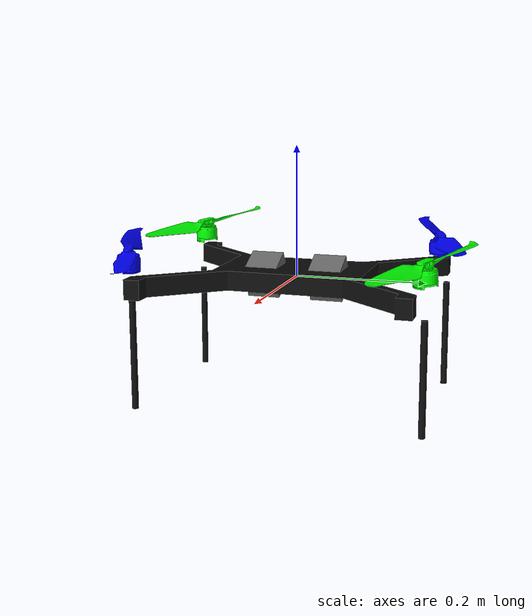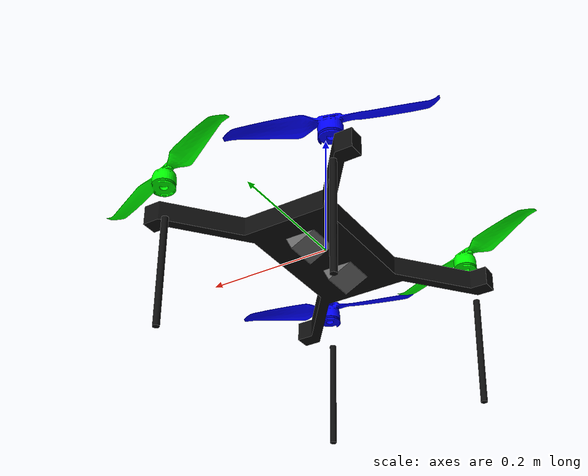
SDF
<?xml version='1.0'?>
<sdf version='1.9'>
  <model name="grass-amb-cam-copy">

    <include>
      <uri>model://grasshopper</uri>
    </include>

    <link name="camera_link">
      <pose>0 -0.05 0 0 90 0</pose>
      <visual name="camera_body">
        <geometry>
          <box>
            <size>0.05 0.05 0.05</size>
          </box>
        </geometry>
        <material>
          <ambient>0.2 0.2 0.2 1</ambient>
          <diffuse>0.4 0.4 0.4 1</diffuse>
        </material>
      </visual>
      <sensor name="camera" type="camera">
        <pose degrees="true"> 0 -0.05 0 0 90 0</pose>

        <camera>
          <vertical_fov>1.1693</vertical_fov>
          <horizontal_fov>1.7802</horizontal_fov>
          <image>
            <width>1536</width>
            <height>864</height>
          </image>
          <clip>
            <near>0.05</near>
            <far>15000</far>
          </clip>
        </camera>

        <always_on>1</always_on>
        <update_rate>10</update_rate>
        <visualize>1</visualize>

        <plugin name="GstCameraPlugin"
            filename="GstCameraPlugin">
          <udp_host>127.0.0.1</udp_host>
          <udp_port>5600</udp_port>
          <use_basic_pipeline>true</use_basic_pipeline>
          <use_cuda>false</use_cuda>
        </plugin>

      </sensor>
    </link>

    <joint name="camera_mount" type="fixed">
      <parent>grasshopper::base_link</parent>
      <child>camera_link</child>
    </joint>

    <link name="camera_link2">
      <pose>0 0.05 0 0 90 0</pose>
      <visual name="camera_body2">
        <geometry>
          <box>
            <size>0.05 0.05 0.05</size>
          </box>
        </geometry>
        <material>
          <ambient>0.2 0.2 0.2 1</ambient>
          <diffuse>0.4 0.4 0.4 1</diffuse>
        </material>
      </visual>
      <sensor name="camera2" type="camera">
        <pose degrees="true"> 0 0.05 0 0 90 0</pose>

        <camera>
          <vertical_fov>0.8517</vertical_fov>
          <horizontal_fov>1.0856</horizontal_fov>
          <image>
            <width>1640</width>
            <height>1232</height>
          </image>
          <clip>
            <near>0.05</near>
            <far>15000</far>
          </clip>
        </camera>

        <always_on>1</always_on>
        <update_rate>10</update_rate>
        <visualize>1</visualize>

        <plugin name="GstCameraPlugin"
            filename="GstCameraPlugin">
          <udp_host>127.0.0.1</udp_host>
          <udp_port>5700</udp_port>
          <use_basic_pipeline>true</use_basic_pipeline>
          <use_cuda>false</use_cuda>
        </plugin>

      </sensor>
    </link>

    <joint name="camera_mount2" type="fixed">
      <parent>grasshopper::base_link</parent>
      <child>camera_link2</child>
    </joint>

  </model>
</sdf>

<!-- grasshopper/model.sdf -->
<sdf version='1.9'>
  <model name='grasshopper'>
    <pose>0 0 0 0 0 0</pose>
    <link name='base_link'>
      <velocity_decay>
        <linear>0.0</linear>
        <angular>0.0</angular>
      </velocity_decay>
      <inertial>
        <pose>0 0 0 0 0 0</pose>
        <mass>1.5</mass> <!-- PES GENERAL -->
        <inertia>
          <ixx>0.008</ixx>
          <ixy>0</ixy>
          <ixz>0</ixz>
          <iyy>0.015</iyy>
          <iyz>0</iyz>
          <izz>0.017</izz>
        </inertia>
      </inertial>
      <collision name='base_collision'>
        <pose>0 0 -0.08 0 0 0</pose>
        <geometry>
          <box>
            <size>0.47 0.47 0.23</size>
          </box>
        </geometry>
        <surface>
          <contact>
            <ode>
              <max_vel>100.0</max_vel>
              <min_depth>0.001</min_depth>
            </ode>
          </contact>
          <friction>
            <ode>
              <mu>100000.0</mu>
              <mu2>100000.0</mu2>
            </ode>
          </friction>
        </surface>
      </collision>
      <visual name='base_visual'>
        <pose>0 0 0 0 0 0 </pose>
        <geometry>
          <mesh>
            <uri>model://grasshopper/meshes/model_dron_resized.stl</uri>
          </mesh>
        </geometry>
        <material>
          <ambient>0.05 0.05 0.05</ambient>
          <diffuse>0.05 0.05 0.05</diffuse>
          <specular>1 1 1 1</specular>
          <pbr>
            <metal>
              <metalness>0.5</metalness>
              <roughness>0.5</roughness>
            </metal>
          </pbr>
        </material>
      </visual>
      <visual name='front_left_leg_visual'>
        <pose>0.123 0.22 -0.11 0 0 0</pose>
        <geometry>
          <cylinder>
            <radius>0.005</radius>
            <length>0.17</length>
          </cylinder>
        </geometry>
        <material>
          <ambient>0.05 0.05 0.05</ambient>
          <diffuse>0.05 0.05 0.05</diffuse>
          <specular>0.01 0.01 0.01 1.0</specular>
          <pbr>
            <metal>
              <metalness>0.5</metalness>
              <roughness>0.5</roughness>
            </metal>
          </pbr>
        </material>
      </visual>
      <visual name='front_right_leg_visual'>
        <pose>0.123 -0.22 -0.11 0 0 0</pose>
        <geometry>
          <cylinder>
            <radius>0.005</radius>
            <length>0.17</length>
          </cylinder>
        </geometry>
        <material>
          <ambient>0.05 0.05 0.05</ambient>
          <diffuse>0.05 0.05 0.05</diffuse>
          <specular>0.01 0.01 0.01 1.0</specular>
          <pbr>
            <metal>
              <metalness>0.5</metalness>
              <roughness>0.5</roughness>
            </metal>
          </pbr>
        </material>
      </visual>
      <visual name='rear_left_leg_visual'>
        <pose>-0.140 0.21 -0.11 0 0 0</pose>
        <geometry>
          <cylinder>
            <radius>0.005</radius>
            <length>0.17</length>
          </cylinder>
        </geometry>
        <material>
          <ambient>0.05 0.05 0.05</ambient>
          <diffuse>0.05 0.05 0.05</diffuse>
          <specular>0.01 0.01 0.01 1.0</specular>
          <pbr>
            <metal>
              <metalness>0.5</metalness>
              <roughness>0.5</roughness>
            </metal>
          </pbr>
        </material>
      </visual>
      <visual name='rear_right_leg_visual'>
        <pose>-0.140 -0.21 -0.11 0 0 0</pose>
        <geometry>
          <cylinder>
            <radius>0.005</radius>
            <length>0.17</length>
          </cylinder>
        </geometry>
        <material>
          <ambient>0.05 0.05 0.05</ambient>
          <diffuse>0.05 0.05 0.05</diffuse>
          <specular>0.01 0.01 0.01 1.0</specular>
          <pbr>
            <metal>
              <metalness>0.5</metalness>
              <roughness>0.5</roughness>
            </metal>
          </pbr>
        </material>
      </visual>
    </link>
    <link name='imu_link'>
      <inertial>
        <pose>0 0 0 0 0 0</pose>
        <mass>0.15</mass> <!-- PES IMU -->
        <inertia>
          <ixx>0.00001</ixx>
          <ixy>0</ixy>
          <ixz>0</ixz>
          <iyy>0.00002</iyy>
          <iyz>0</iyz>
          <izz>0.00002</izz>
        </inertia>
      </inertial>
      <sensor name="imu_sensor" type="imu">
        <pose degrees="true">0 0 0 180 0 0</pose>
        <always_on>1</always_on>
        <update_rate>1000.0</update_rate>
      </sensor>
    </link>
    <joint name='imu_joint' type='revolute'>
      <child>imu_link</child>
      <parent>base_link</parent>
      <axis>
        <xyz>0 0 1</xyz>
        <limit>
          <lower>0</lower>
          <upper>0</upper>
          <effort>0</effort>
          <velocity>0</velocity>
        </limit>
        <dynamics>
          <damping>1.0</damping>
        </dynamics>
      </axis>
    </joint>
    <link name='rotor_0'>
      <pose>0.13 -0.22 0.023 0 0 0</pose>
      <inertial>
        <pose>0 0 0 0 0 0</pose>
        <mass>0.025</mass>
        <inertia>
          <ixx>9.75e-06</ixx>
          <ixy>0</ixy>
          <ixz>0</ixz>
          <iyy>0.000166704</iyy>
          <iyz>0</iyz>
          <izz>0.000167604</izz>
        </inertia>
      </inertial>
      <collision name='rotor_0_collision'>
        <pose>0 0 0 0 0 0</pose>
        <geometry>
          <cylinder>
            <length>0.005</length>
            <radius>0.1</radius>
          </cylinder>
        </geometry>
        <surface>
          <contact>
            <ode/>
          </contact>
          <friction>
            <ode/>
          </friction>
        </surface>
      </collision>
      <visual name='rotor_0_visual'>
        <pose>0 0 0 0 0 0</pose>
        <geometry>
          <mesh>
            <scale>1 1 1</scale>
            <uri>model://iris_with_standoffs/meshes/iris_prop_ccw.dae</uri>
          </mesh>
        </geometry>
        <material>
          <ambient>0 0 1</ambient>
          <diffuse>0 0 1</diffuse>
          <specular>1 1 1 1</specular>
          <pbr>
            <metal>
              <metalness>0.5</metalness>
              <roughness>0.5</roughness>
            </metal>
          </pbr>
        </material>
      </visual>
      <gravity>1</gravity>
      <velocity_decay/>
      <self_collide>0</self_collide>
    </link>
    <joint name='rotor_0_joint' type='revolute'>
      <child>rotor_0</child>
      <parent>base_link</parent>
      <axis>
        <xyz>0 0 1</xyz>
        <limit>
          <lower>-1e+16</lower>
          <upper>1e+16</upper>
        </limit>
        <dynamics>
          <damping>0.004</damping>
        </dynamics>
      </axis>
      <physics>
        <ode>
          <implicit_spring_damper>1</implicit_spring_damper>
        </ode>
      </physics>
    </joint>
    <link name='rotor_1'>
      <pose>-0.13 0.2 0.023 0 0 0</pose>
      <inertial>
        <pose>0 0 0 0 0 0</pose>
        <mass>0.025</mass>
        <inertia>
          <ixx>9.75e-06</ixx>
          <ixy>0</ixy>
          <ixz>0</ixz>
          <iyy>0.000166704</iyy>
          <iyz>0</iyz>
          <izz>0.000167604</izz>
        </inertia>
      </inertial>
      <collision name='rotor_1_collision'>
        <pose>0 0 0 0 0 0</pose>
        <geometry>
          <cylinder>
            <length>0.005</length>
            <radius>0.1</radius>
          </cylinder>
        </geometry>
        <surface>
          <contact>
            <ode/>
          </contact>
          <friction>
            <ode/>
          </friction>
        </surface>
      </collision>
      <visual name='rotor_1_visual'>
        <pose>0 0 0 0 0 0</pose>
        <geometry>
          <mesh>
            <scale>1 1 1</scale>
            <uri>model://iris_with_standoffs/meshes/iris_prop_ccw.dae</uri>
          </mesh>
        </geometry>
        <material>
          <ambient>0 0 1 1</ambient>
          <diffuse>0 0 1 1</diffuse>
          <specular>1 1 1 1</specular>
          <pbr>
            <metal>
              <metalness>0.5</metalness>
              <roughness>0.5</roughness>
            </metal>
          </pbr>
        </material>
      </visual>
      <gravity>1</gravity>
      <velocity_decay/>
      <self_collide>0</self_collide>
    </link>
    <joint name='rotor_1_joint' type='revolute'>
      <child>rotor_1</child>
      <parent>base_link</parent>
      <axis>
        <xyz>0 0 1</xyz>
        <limit>
          <lower>-1e+16</lower>
          <upper>1e+16</upper>
        </limit>
        <dynamics>
          <damping>0.004</damping>
        </dynamics>
      </axis>
      <physics>
        <ode>
          <implicit_spring_damper>1</implicit_spring_damper>
        </ode>
      </physics>
    </joint>
    <link name='rotor_2'>
      <pose>0.13 0.22 0.023 0 0 0</pose>
      <inertial>
        <pose>0 0 0 0 0 0</pose>
        <mass>0.025</mass>
        <inertia>
          <ixx>9.75e-06</ixx>
          <ixy>0</ixy>
          <ixz>0</ixz>
          <iyy>0.000166704</iyy>
          <iyz>0</iyz>
          <izz>0.000167604</izz>
        </inertia>
      </inertial>
      <collision name='rotor_2_collision'>
        <pose>0 0 0 0 0 0</pose>
        <geometry>
          <cylinder>
            <length>0.005</length>
            <radius>0.1</radius>
          </cylinder>
        </geometry>
        <surface>
          <contact>
            <ode/>
          </contact>
          <friction>
            <ode/>
          </friction>
        </surface>
      </collision>
      <visual name='rotor_2_visual'>
        <pose>0 0 0 0 0 0</pose>
        <geometry>
          <mesh>
            <scale>1 1 1</scale>
            <uri>model://iris_with_standoffs/meshes/iris_prop_cw.dae</uri>
          </mesh>
        </geometry>
        <material>
          <ambient>0 1 0</ambient>
          <diffuse>0 1 0</diffuse>
          <specular>1 1 1 1</specular>
          <pbr>
            <metal>
              <metalness>0.5</metalness>
              <roughness>0.5</roughness>
            </metal>
          </pbr>
        </material>
      </visual>
      <gravity>1</gravity>
      <velocity_decay/>
      <self_collide>0</self_collide>
    </link>
    <joint name='rotor_2_joint' type='revolute'>
      <child>rotor_2</child>
      <parent>base_link</parent>
      <axis>
        <xyz>0 0 1</xyz>
        <limit>
          <lower>-1e+16</lower>
          <upper>1e+16</upper>
        </limit>
        <dynamics>
          <damping>0.004</damping>
        </dynamics>
      </axis>
      <physics>
        <ode>
          <implicit_spring_damper>1</implicit_spring_damper>
        </ode>
      </physics>
    </joint>
    <link name='rotor_3'>
      <pose>-0.13 -0.2 0.023 0 0 0</pose>
      <inertial>
        <pose>0 0 0 0 0 0</pose>
        <mass>0.025</mass>
        <inertia>
          <ixx>9.75e-06</ixx>
          <ixy>0</ixy>
          <ixz>0</ixz>
          <iyy>0.000166704</iyy>
          <iyz>0</iyz>
          <izz>0.000167604</izz>
        </inertia>
      </inertial>
      <collision name='rotor_3_collision'>
        <pose>0 0 0 0 0 0</pose>
        <geometry>
          <cylinder>
            <length>0.005</length>
            <radius>0.1</radius>
          </cylinder>
        </geometry>
        <surface>
          <contact>
            <ode/>
          </contact>
          <friction>
            <ode/>
          </friction>
        </surface>
      </collision>
      <visual name='rotor_3_visual'>
        <pose>0 0 0 0 0 0</pose>
        <geometry>
          <mesh>
            <scale>1 1 1</scale>
            <uri>model://iris_with_standoffs/meshes/iris_prop_cw.dae</uri>
          </mesh>
        </geometry>
        <material>
          <ambient>0 1 0</ambient>
          <diffuse>0 1 0</diffuse>
          <specular>1 1 1 1</specular>
          <pbr>
            <metal>
              <metalness>0.5</metalness>
              <roughness>0.5</roughness>
            </metal>
          </pbr>
        </material>
      </visual>
      <gravity>1</gravity>
      <velocity_decay/>
      <self_collide>0</self_collide>
    </link>
    <joint name='rotor_3_joint' type='revolute'>
      <child>rotor_3</child>
      <parent>base_link</parent>
      <axis>
        <xyz>0 0 1</xyz>
        <limit>
          <lower>-1e+16</lower>
          <upper>1e+16</upper>
        </limit>
        <dynamics>
          <damping>0.004</damping>
        </dynamics>
      </axis>
      <physics>
        <ode>
          <implicit_spring_damper>1</implicit_spring_damper>
        </ode>
      </physics>
    </joint>

    <plugin filename="gz-sim-joint-state-publisher-system"
      name="gz::sim::systems::JointStatePublisher">
    </plugin>
    <plugin filename="gz-sim-lift-drag-system"
        name="gz::sim::systems::LiftDrag">
      <a0>0.3</a0>
      <alpha_stall>1.4</alpha_stall>
      <cla>4.2500</cla>
      <cda>0.10</cda>
      <cma>0.0</cma>
      <cla_stall>-0.025</cla_stall>
      <cda_stall>0.0</cda_stall>
      <cma_stall>0.0</cma_stall>
      <area>0.002</area>
      <air_density>1.2041</air_density>
      <cp>0.084 0 0</cp>
      <forward>0 1 0</forward>
      <upward>0 0 1</upward>
      <link_name>rotor_0</link_name>
    </plugin>
    <plugin filename="gz-sim-lift-drag-system"
        name="gz::sim::systems::LiftDrag">
      <a0>0.3</a0>
      <alpha_stall>1.4</alpha_stall>
      <cla>4.2500</cla>
      <cda>0.10</cda>
      <cma>0.0</cma>
      <cla_stall>-0.025</cla_stall>
      <cda_stall>0.0</cda_stall>
      <cma_stall>0.0</cma_stall>
      <area>0.002</area>
      <air_density>1.2041</air_density>
      <cp>-0.084 0 0</cp>
      <forward>0 -1 0</forward>
      <upward>0 0 1</upward>
      <link_name>rotor_0</link_name>
    </plugin>

    <plugin filename="gz-sim-lift-drag-system"
        name="gz::sim::systems::LiftDrag">
      <a0>0.3</a0>
      <alpha_stall>1.4</alpha_stall>
      <cla>4.2500</cla>
      <cda>0.10</cda>
      <cma>0.0</cma>
      <cla_stall>-0.025</cla_stall>
      <cda_stall>0.0</cda_stall>
      <cma_stall>0.0</cma_stall>
      <area>0.002</area>
      <air_density>1.2041</air_density>
      <cp>0.084 0 0</cp>
      <forward>0 1 0</forward>
      <upward>0 0 1</upward>
      <link_name>rotor_1</link_name>
    </plugin>
    <plugin filename="gz-sim-lift-drag-system"
        name="gz::sim::systems::LiftDrag">
      <a0>0.3</a0>
      <alpha_stall>1.4</alpha_stall>
      <cla>4.2500</cla>
      <cda>0.10</cda>
      <cma>0.0</cma>
      <cla_stall>-0.025</cla_stall>
      <cda_stall>0.0</cda_stall>
      <cma_stall>0.0</cma_stall>
      <area>0.002</area>
      <air_density>1.2041</air_density>
      <cp>-0.084 0 0</cp>
      <forward>0 -1 0</forward>
      <upward>0 0 1</upward>
      <link_name>rotor_1</link_name>
    </plugin>

    <plugin filename="gz-sim-lift-drag-system"
        name="gz::sim::systems::LiftDrag">
      <a0>0.3</a0>
      <alpha_stall>1.4</alpha_stall>
      <cla>4.2500</cla>
      <cda>0.10</cda>
      <cma>0.0</cma>
      <cla_stall>-0.025</cla_stall>
      <cda_stall>0.0</cda_stall>
      <cma_stall>0.0</cma_stall>
      <area>0.002</area>
      <air_density>1.2041</air_density>
      <cp>0.084 0 0</cp>
      <forward>0 -1 0</forward>
      <upward>0 0 1</upward>
      <link_name>rotor_2</link_name>
    </plugin>
    <plugin filename="gz-sim-lift-drag-system"
        name="gz::sim::systems::LiftDrag">
      <a0>0.3</a0>
      <alpha_stall>1.4</alpha_stall>
      <cla>4.2500</cla>
      <cda>0.10</cda>
      <cma>0.0</cma>
      <cla_stall>-0.025</cla_stall>
      <cda_stall>0.0</cda_stall>
      <cma_stall>0.0</cma_stall>
      <area>0.002</area>
      <air_density>1.2041</air_density>
      <cp>-0.084 0 0</cp>
      <forward>0 1 0</forward>
      <upward>0 0 1</upward>
      <link_name>rotor_2</link_name>
    </plugin>

    <plugin filename="gz-sim-lift-drag-system"
        name="gz::sim::systems::LiftDrag">
      <a0>0.3</a0>
      <alpha_stall>1.4</alpha_stall>
      <cla>4.2500</cla>
      <cda>0.10</cda>
      <cma>0.0</cma>
      <cla_stall>-0.025</cla_stall>
      <cda_stall>0.0</cda_stall>
      <cma_stall>0.0</cma_stall>
      <area>0.002</area>
      <air_density>1.2041</air_density>
      <cp>0.084 0 0</cp>
      <forward>0 -1 0</forward>
      <upward>0 0 1</upward>
      <link_name>rotor_3</link_name>
    </plugin>
    <plugin filename="gz-sim-lift-drag-system"
        name="gz::sim::systems::LiftDrag">
      <a0>0.3</a0>
      <alpha_stall>1.4</alpha_stall>
      <cla>4.2500</cla>
      <cda>0.10</cda>
      <cma>0.0</cma>
      <cla_stall>-0.025</cla_stall>
      <cda_stall>0.0</cda_stall>
      <cma_stall>0.0</cma_stall>
      <area>0.002</area>
      <air_density>1.2041</air_density>
      <cp>-0.084 0 0</cp>
      <forward>0 1 0</forward>
      <upward>0 0 1</upward>
      <link_name>rotor_3</link_name>
    </plugin>

    <plugin filename="gz-sim-apply-joint-force-system"
      name="gz::sim::systems::ApplyJointForce">
      <joint_name>rotor_0_joint</joint_name>
    </plugin>
    <plugin filename="gz-sim-apply-joint-force-system"
      name="gz::sim::systems::ApplyJointForce">
      <joint_name>rotor_1_joint</joint_name>
    </plugin>
    <plugin filename="gz-sim-apply-joint-force-system"
      name="gz::sim::systems::ApplyJointForce">
      <joint_name>rotor_2_joint</joint_name>
    </plugin>
    <plugin filename="gz-sim-apply-joint-force-system"
      name="gz::sim::systems::ApplyJointForce">
      <joint_name>rotor_3_joint</joint_name>
    </plugin>

    <plugin name="ArduPilotPlugin"
      filename="ArduPilotPlugin">
      <!-- Port settings -->
      <fdm_addr>127.0.0.1</fdm_addr>
      <fdm_port_in>9002</fdm_port_in>
      <connectionTimeoutMaxCount>5</connectionTimeoutMaxCount>
      <lock_step>1</lock_step>
      <have_32_channels>0</have_32_channels>

      <!-- Frame conventions
        Require by ArduPilot: change model and gazebo from XYZ to XY-Z coordinates
      -->
      <modelXYZToAirplaneXForwardZDown degrees="true">0 0 0 180 0 0</modelXYZToAirplaneXForwardZDown>
      <gazeboXYZToNED degrees="true">0 0 0 180 0 90</gazeboXYZToNED>

      <!-- Sensors -->
      <imuName>imu_link::imu_sensor</imuName>

      <!--
          incoming control command [0, 1]
          so offset it by 0 to get [0, 1]
          and divide max target by 1.
          offset = 0
          multiplier = 838 max rpm / 1 = 838
        -->
      <control channel="0">
        <jointName>rotor_0_joint</jointName>
        <useForce>1</useForce>
        <multiplier>838</multiplier>
        <offset>0</offset>
        <servo_min>1100</servo_min>
        <servo_max>1900</servo_max>
        <type>VELOCITY</type>
        <p_gain>0.20</p_gain>
        <i_gain>0</i_gain>
        <d_gain>0</d_gain>
        <i_max>0</i_max>
        <i_min>0</i_min>
        <cmd_max>2.5</cmd_max>
        <cmd_min>-2.5</cmd_min>
        <controlVelocitySlowdownSim>1</controlVelocitySlowdownSim>
      </control>

      <control channel="1">
        <jointName>rotor_1_joint</jointName>
        <useForce>1</useForce>
        <multiplier>838</multiplier>
        <offset>0</offset>
        <servo_min>1100</servo_min>
        <servo_max>1900</servo_max>
        <type>VELOCITY</type>
        <p_gain>0.20</p_gain>
        <i_gain>0</i_gain>
        <d_gain>0</d_gain>
        <i_max>0</i_max>
        <i_min>0</i_min>
        <cmd_max>2.5</cmd_max>
        <cmd_min>-2.5</cmd_min>
        <controlVelocitySlowdownSim>1</controlVelocitySlowdownSim>
      </control>

      <control channel="2">
        <jointName>rotor_2_joint</jointName>
        <useForce>1</useForce>
        <multiplier>-838</multiplier>
        <offset>0</offset>
        <servo_min>1100</servo_min>
        <servo_max>1900</servo_max>
        <type>VELOCITY</type>
        <p_gain>0.20</p_gain>
        <i_gain>0</i_gain>
        <d_gain>0</d_gain>
        <i_max>0</i_max>
        <i_min>0</i_min>
        <cmd_max>2.5</cmd_max>
        <cmd_min>-2.5</cmd_min>
        <controlVelocitySlowdownSim>1</controlVelocitySlowdownSim>
      </control>

      <control channel="3">
        <jointName>rotor_3_joint</jointName>
        <useForce>1</useForce>
        <multiplier>-838</multiplier>
        <offset>0</offset>
        <servo_min>1100</servo_min>
        <servo_max>1900</servo_max>
        <type>VELOCITY</type>
        <p_gain>0.20</p_gain>
        <i_gain>0</i_gain>
        <d_gain>0</d_gain>
        <i_max>0</i_max>
        <i_min>0</i_min>
        <cmd_max>2.5</cmd_max>
        <cmd_min>-2.5</cmd_min>
        <controlVelocitySlowdownSim>1</controlVelocitySlowdownSim>
      </control>

    </plugin>
  </model>
</sdf>
